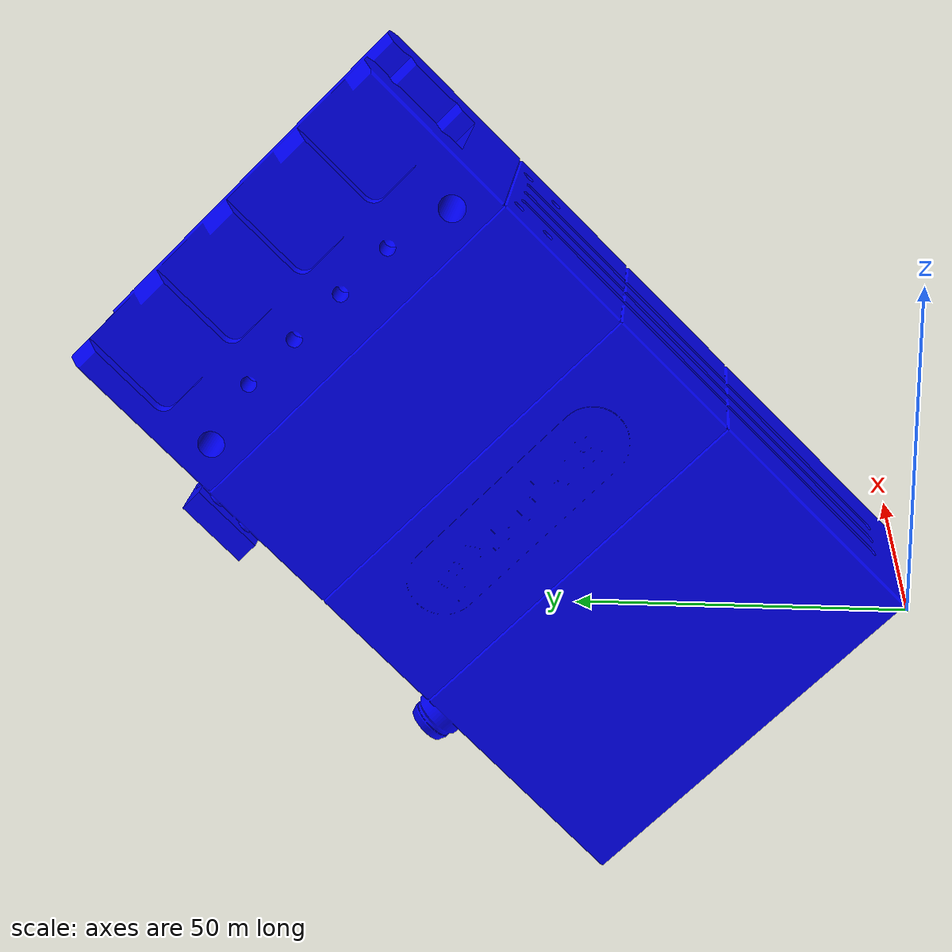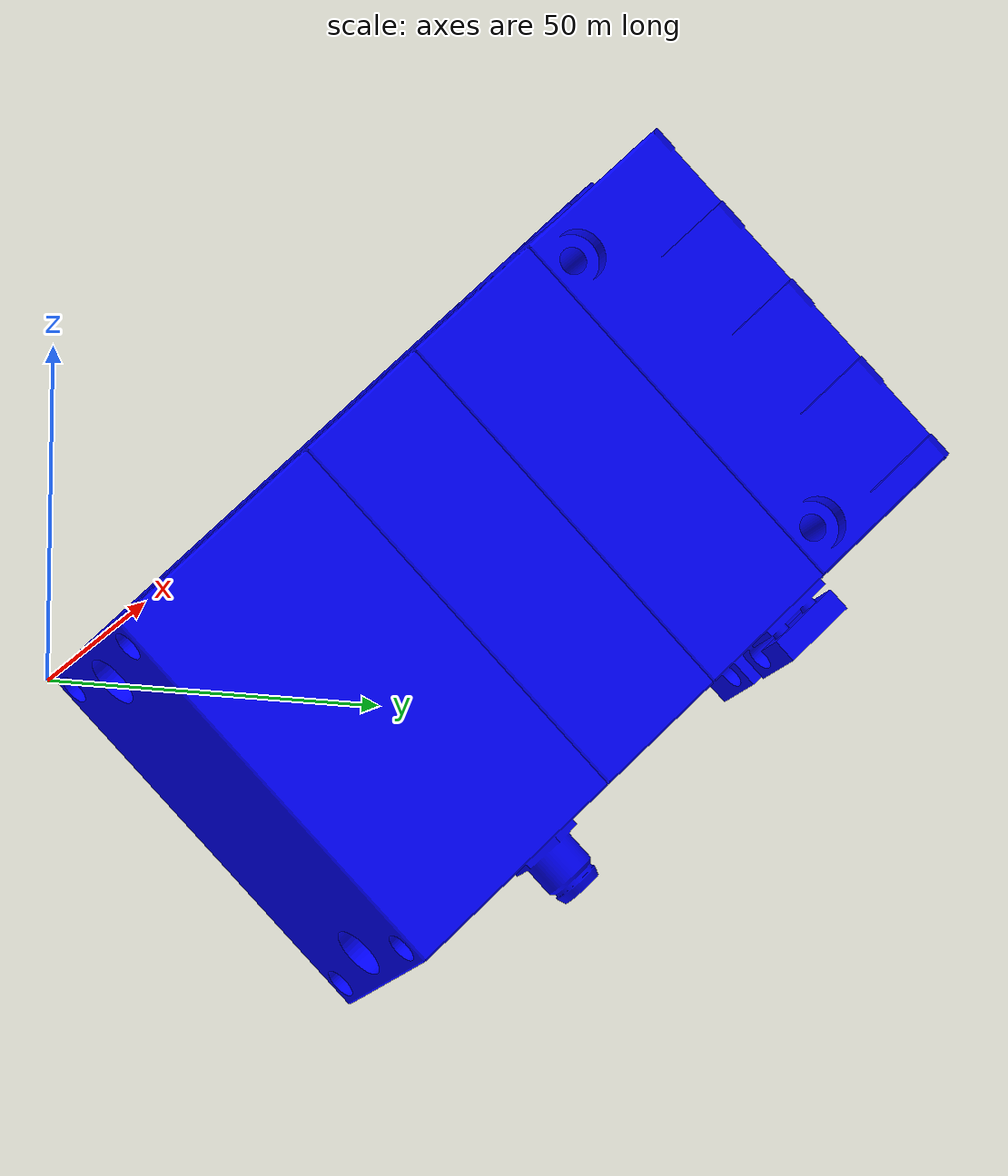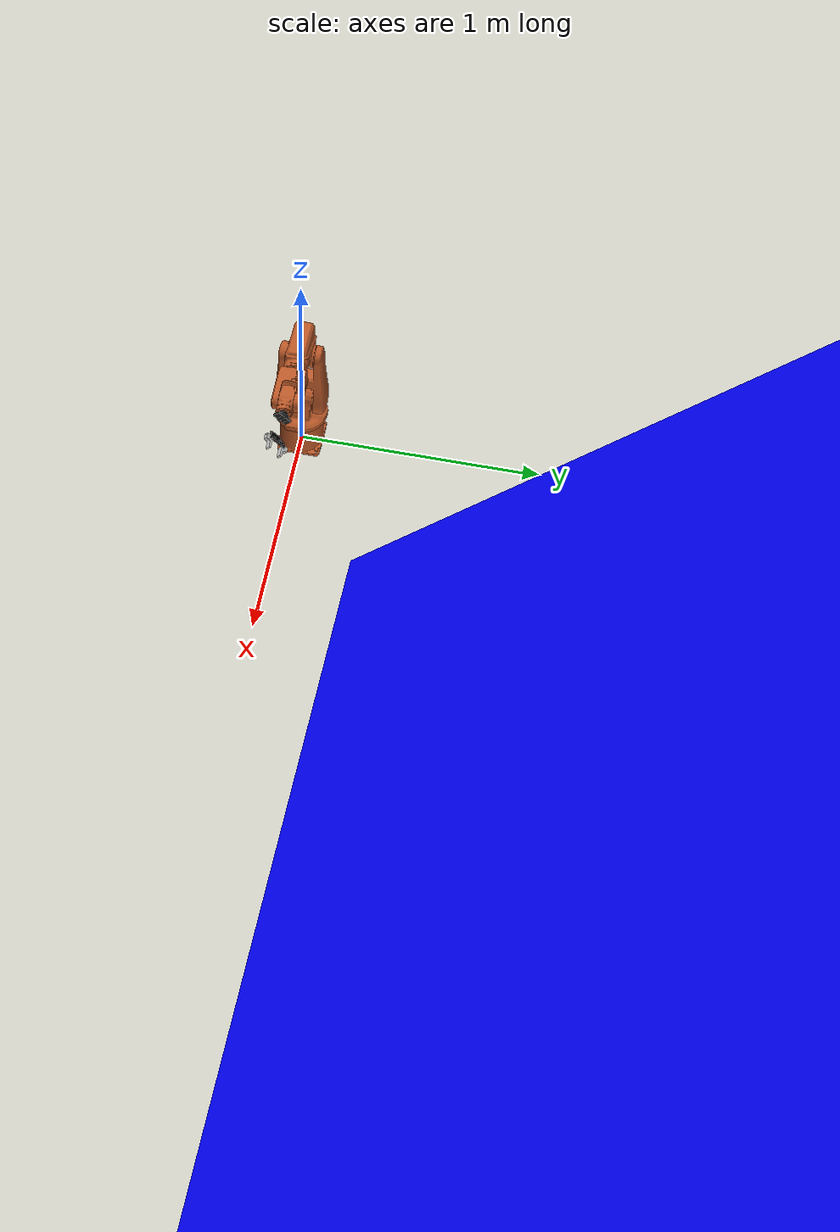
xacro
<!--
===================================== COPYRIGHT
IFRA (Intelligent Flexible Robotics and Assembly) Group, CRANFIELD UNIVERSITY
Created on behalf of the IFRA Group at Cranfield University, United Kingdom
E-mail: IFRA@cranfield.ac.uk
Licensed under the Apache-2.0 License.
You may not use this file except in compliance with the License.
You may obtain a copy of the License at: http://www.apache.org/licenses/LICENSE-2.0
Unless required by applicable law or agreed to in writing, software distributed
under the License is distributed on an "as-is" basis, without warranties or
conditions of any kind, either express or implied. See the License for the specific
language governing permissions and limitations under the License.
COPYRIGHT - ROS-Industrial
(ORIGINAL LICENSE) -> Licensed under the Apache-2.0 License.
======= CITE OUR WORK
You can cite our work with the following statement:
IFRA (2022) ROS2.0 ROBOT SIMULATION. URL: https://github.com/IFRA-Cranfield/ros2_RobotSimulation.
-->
<?xml version="1.0" ?>

<robot name="irb120egp64" xmlns:xacro="http://ros.org/wiki/xacro">

  <!-- Include XACRO-MACRO file of the IRB120: -->
  <xacro:include filename="$(find irb120egp64_ros2_gazebo)/urdf/irb120egp64_macro.urdf.xacro"/>
  <xacro:irb120egp64 prefix=""/>

  <!-- Fix robot to Gazebo world -->
  <link name="world"/>

  <joint name="world-base_link-fixed" type="fixed">
    <parent link="world"/>
    <child link="base_link"/>
  </joint>

</robot>

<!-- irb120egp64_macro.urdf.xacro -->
<robot xmlns:xacro="http://ros.org/wiki/xacro">

  <!-- Include additional ABB-Resources/MATERIALS+COLOUR xacro files: -->
  <xacro:include filename="$(find irb120egp64_ros2_gazebo)/urdf/abb_resources/common_materials.xacro"/>

  <!-- Load TRANSMISSION file: -->
  <xacro:include filename="$(find irb120egp64_ros2_gazebo)/urdf/irb120egp64_transmission.xacro" />
  <!-- Load GAZEBO/ROS2_CONTROL file: -->
  <xacro:include filename="$(find irb120egp64_ros2_gazebo)/urdf/irb120egp64_gazebo.xacro" />

  <!-- XACRO-MACRO of ABB-IRB120: -->
  <xacro:macro name="irb120egp64" params="prefix">

    <!-- ABB-IRB120 + EGP64 TRANSMISSION: -->
    <xacro:irb120egp64_transmission prefix=""/>
    <!-- ABB-IRB120 + EGP64 GAZEBO - ROS2_CONTROL: -->
    <xacro:irb120egp64_gazebo prefix=""/>

    <!-- ***** ABB-IRB120 + EGP64 ROBOT .urdf SERIAL CHAIN ***** -->

    <!-- Link list: -->
    <!-- base_link -->
    <link name="${prefix}base_link">
      <inertial>
        <mass value="6.215"/>
        <origin xyz="-0.04204 8.01E-05 0.07964" rpy="0 0 0"/>
        <inertia ixx="0.0247272" ixy="-8.0784E-05" ixz="0.00130902" iyy="0.0491285" iyz="-8.0419E-06" izz="0.0472376"/>
      </inertial>
      <visual>
        <origin xyz="0 0 0" rpy="0 0 0"/>
        <geometry>
          <mesh filename="file://$(find irb120_ros2_gazebo)/meshes/visual/base_link.stl"/>
        </geometry>
        <xacro:material_abb_orange />
      </visual>
      <collision>
        <origin xyz="0 0 0" rpy="0 0 0"/>
        <geometry>
          <mesh filename="file://$(find irb120_ros2_gazebo)/meshes/collision/base_link.stl"/>
        </geometry>
        <xacro:material_abb_yellow />
      </collision>
    </link>

    <!-- link_1 -->
    <link name="${prefix}link_1">
      <inertial>
        <mass value="3.067" />
        <origin xyz="9.77E-05 -0.00012 0.23841" rpy="0 0 0"/>
        <inertia ixx="0.0142175" ixy="-1.28579E-05" ixz="-2.31364E-05" iyy="0.0144041" iyz="1.93404E-05" izz="0.0104533"/>
      </inertial>
      <visual>
        <origin xyz="0 0 0" rpy="0 0 0"/>
        <geometry>
          <mesh filename="file://$(find irb120_ros2_gazebo)/meshes/visual/link_1.stl"/>
        </geometry>
        <xacro:material_abb_orange />
      </visual>
      <collision>
        <origin xyz="0 0 0" rpy="0 0 0"/>
        <geometry>
          <mesh filename="file://$(find irb120_ros2_gazebo)/meshes/collision/link_1.stl"/>
        </geometry>
        <xacro:material_abb_yellow />
      </collision>
    </link>

    <!-- link_2 -->
    <link name="${prefix}link_2">
      <inertial>
        <mass value="3.909"/>
        <origin xyz="0.00078 -0.00212 0.10124" rpy="0 0 0"/>
        <inertia ixx="0.0603111" ixy="9.83431E-06" ixz="5.72407E-05" iyy="0.041569" iyz="-0.00050497" izz="0.0259548"/>
      </inertial>
      <visual>
        <origin xyz="0 0 0" rpy="0 0 0"/>
        <geometry>
          <mesh filename="file://$(find irb120_ros2_gazebo)/meshes/visual/link_2.stl"/>
        </geometry>
        <xacro:material_abb_orange />
      </visual>
      <collision>
        <origin xyz="0 0 0" rpy="0 0 0"/>
        <geometry>
          <mesh filename="file://$(find irb120_ros2_gazebo)/meshes/collision/link_2.stl"/>
        </geometry>
        <xacro:material_abb_yellow />
      </collision>
    </link>

    <!-- link_3 -->
    <link name="${prefix}link_3">
      <inertial>
        <mass value="2.944"/>
        <origin xyz="0.02281 0.00106 0.05791" rpy="0 0 0"/>
        <inertia ixx="0.00835606" ixy="-8.01545E-05" ixz="0.00142884" iyy="0.016713" iyz="-0.000182227" izz="0.0126984"/>
      </inertial>
      <visual>
        <origin xyz="0 0 0" rpy="0 0 0"/>
        <geometry>
          <mesh filename="file://$(find irb120_ros2_gazebo)/meshes/visual/link_3.stl"/>
        </geometry>
        <xacro:material_abb_orange />
      </visual>
      <collision>
        <origin xyz="0 0 0" rpy="0 0 0"/>
        <geometry>
          <mesh filename="file://$(find irb120_ros2_gazebo)/meshes/collision/link_3.stl"/>
        </geometry>
        <xacro:material_abb_yellow />
      </collision>
    </link>

    <!-- link_4 -->
    <link name="${prefix}link_4">
      <inertial>
        <mass value="1.328"/>
        <origin xyz="0.2247 0.00015 0.00041" rpy="0 0 0"/>
        <inertia ixx="0.00284661" ixy="-2.12765E-05" ixz="-1.6435E-05" iyy="0.00401346" iyz="1.31336E-05" izz="0.0052535"/>
      </inertial>
      <visual>
        <origin xyz="0 0 0" rpy="0 0 0"/>
        <geometry>
          <mesh filename="file://$(find irb120_ros2_gazebo)/meshes/visual/link_4.stl"/>
        </geometry>
        <xacro:material_abb_orange />
      </visual>
      <collision>
        <origin xyz="0 0 0" rpy="0 0 0"/>
        <geometry>
          <mesh filename="file://$(find irb120_ros2_gazebo)/meshes/collision/link_4.stl"/>
        </geometry>
        <xacro:material_abb_yellow />
      </collision>
    </link>

    <!-- link_5 -->
    <link name="${prefix}link_5">
      <inertial>
        <mass value="0.546"/>
        <origin xyz="-0.00109 3.68E-05 6.22E-05" rpy="0 0 0"/>
        <inertia ixx="0.000404891" ixy="1.61943E-06" ixz="8.46805E-07" iyy="0.000892825" iyz="-1.51792E-08" izz="0.000815468"/>
      </inertial>
      <visual>
        <origin xyz="0 0 0" rpy="0 0 0"/>
        <geometry>
          <mesh filename="file://$(find irb120_ros2_gazebo)/meshes/visual/link_5.stl"/>
        </geometry>
        <xacro:material_abb_orange />
      </visual>
      <collision>
        <origin xyz="0 0 0" rpy="0 0 0"/>
        <geometry>
          <mesh filename="file://$(find irb120_ros2_gazebo)/meshes/collision/link_5.stl"/>
        </geometry>
        <xacro:material_abb_yellow />
      </collision>
    </link>

    <!-- link_6 -->
    <link name="${prefix}link_6">
      <inertial>
        <mass value="0.137"/>
        <origin xyz="-0.00706 -0.00017 -1.32E-06" rpy="0 0 0"/>
        <inertia ixx="0.001" ixy="0" ixz="0" iyy="0.001" iyz="0" izz="0.001"/>
      </inertial>
      <visual>
        <origin xyz="0 0 0" rpy="0 0 0"/>
        <geometry>
          <mesh filename="file://$(find irb120_ros2_gazebo)/meshes/visual/link_6.stl"/>
        </geometry>
        <xacro:material_abb_black />
      </visual>
      <collision>
        <origin xyz="0 0 0" rpy="0 0 0"/>
        <geometry>
          <mesh filename="file://$(find irb120_ros2_gazebo)/meshes/collision/link_6.stl"/>
        </geometry>
        <xacro:material_abb_yellow />
      </collision>
    </link>
    <!-- end of link list -->

    <!-- Joint list: -->
    <!-- joint_1 -->
    <joint name="${prefix}joint_1" type="revolute">
      <origin rpy="0 0 0" xyz="0 0 0"/>
      <parent link="${prefix}base_link"/>
      <child link="${prefix}link_1"/>
      <limit effort="0" lower="-2.87979" upper="2.87979" velocity="4.36332"/>
      <axis xyz="0 0 1"/>
      <dynamics damping="0.0" friction="0.0"/>
    </joint>

    <!-- joint_2 -->
    <joint name="${prefix}joint_2" type="revolute">
      <origin rpy="0 0 0" xyz="0 0 0.29"/>
      <parent link="${prefix}link_1"/>
      <child link="${prefix}link_2"/>
      <limit effort="0" lower="-1.91986" upper="1.91986" velocity="4.36332"/>
      <axis xyz="0 1 0"/>
      <dynamics damping="0.0" friction="0.0"/>
    </joint>

    <!-- joint_3 -->
    <joint name="${prefix}joint_3" type="revolute">
      <origin rpy="0 0 0" xyz="0 0 0.27"/>
      <parent link="${prefix}link_2"/>
      <child link="${prefix}link_3"/>
      <limit effort="0" lower="-1.91986" upper="1.22173" velocity="4.36332"/>
      <axis xyz="0 1 0"/>
      <dynamics damping="0.0" friction="0.0"/>
    </joint>

    <!-- joint_4 -->
    <joint name="${prefix}joint_4" type="revolute">
      <origin rpy="0 0 0" xyz="0 0 0.07"/>
      <parent link="${prefix}link_3"/>
      <child link="${prefix}link_4"/>
      <limit effort="0" lower="-2.79253" upper="2.79253" velocity="5.58505"/>
      <axis xyz="1 0 0"/>
      <dynamics damping="0.0" friction="0.0"/>
    </joint>

    <!-- joint_5 -->
    <joint name="${prefix}joint_5" type="revolute">
      <origin rpy="0 0 0" xyz="0.302 0 0"/>
      <parent link="${prefix}link_4"/>
      <child link="${prefix}link_5"/>
      <limit effort="0" lower="-2.094395" upper="2.094395" velocity="5.58505"/>
      <axis xyz="0 1 0"/>
      <dynamics damping="0.0" friction="0.0"/>
    </joint>

    <!-- joint_6 -->
    <joint name="${prefix}joint_6" type="revolute">
      <origin rpy="0 0 0" xyz="0.072 0 0"/>
      <parent link="${prefix}link_5"/>
      <child link="${prefix}link_6"/>
      <limit effort="0" lower="-6.98132" upper="6.98132" velocity="7.33038"/>
      <axis xyz="1 0 0"/>
      <dynamics damping="0.0" friction="0.0"/>
    </joint>
    <!-- end of joint list -->

    <!-- ROS-Industrial 'base' frame: base_link to ABB World Coordinates transform -->
    <link name="${prefix}base" />
    <joint name="${prefix}base_link-base" type="fixed">
      <origin xyz="0 0 0" rpy="0 0 0"/>
      <parent link="${prefix}base_link"/>
      <child link="${prefix}base"/>
    </joint>

    <!-- ROS-Industrial 'flange' frame: attachment point for EEF models -->
    <link name="${prefix}flange"/>
    <joint type="fixed" name="${prefix}joint_6-flange">
      <origin xyz="0 0 0" rpy="0 0 0"/>
      <parent link="${prefix}link_6"/>
      <child link="${prefix}flange"/>
    </joint>

    <!-- ROS-Industrial 'tool0' frame: all-zeros tool frame -->
    <link name="${prefix}tool0" />
    <joint name="${prefix}link_6-tool0" type="fixed">
      <origin xyz="0 0 0" rpy="0 ${radians(90)} 0" />
      <parent link="${prefix}flange" />
      <child link="${prefix}tool0" />
    </joint>

    <!-- ===== Link SCHUNK GRIPPER to ABB IRB120 ROBOT ===== -->

    <!-- Schunk coupler (LINK): -->
    <link name="schunk_coupler">
      <visual>
        <geometry>
          <mesh filename="file://$(find irb120egp64_ros2_gazebo)/meshes/egp64/Schunk Gripper - ADAPTER.dae" />
        </geometry>
        <material name="flat_black"/>
      </visual>
      <collision>
        <geometry>
          <mesh filename="file://$(find irb120egp64_ros2_gazebo)/meshes/egp64/Schunk Gripper - ADAPTER.dae" />
        </geometry>
      </collision>
      <inertial>
        <origin xyz="0 0 0" rpy="0 0 ${pi/4}" />
        <mass value="0.001" />
        <inertia ixx="0.001" ixy="0.0" ixz="0.0" iyy="0.001" iyz="0.0" izz="0.001"/>
      </inertial>
    </link>

    <!-- Schunk coupler (JOINT): -->
    <joint name="schunk_coupler_joint" type="fixed">
      <origin xyz="0 0 0.001" rpy="0 0 ${pi/4}" />
      <parent link="tool0"/>
      <child link="schunk_coupler"/>
    </joint>
    <gazebo reference="schunk_coupler">
      <mu1>0.9</mu1>
      <mu2>0.9</mu2>
      <material>Gazebo/FlatBlack</material>
    </gazebo>

    <link name="egp64_gripper_base_link">
      <inertial>
        <origin xyz="0 0 0" rpy="0 0 0" />
        <mass value="0.005" />
        <inertia ixx="0.001" ixy="0.0" ixz="0.0" iyy="0.001" iyz="0.0" izz="0.001"/>
      </inertial>
      <visual>
        <geometry>
          <mesh filename="file://$(find irb120egp64_ros2_gazebo)/meshes/egp64/Schunk Gripper - BASE noAdapter.dae" />
        </geometry>
        <material name="blue">
          <color rgba="0 0 1 1"/>
        </material>
      </visual>
      <collision>
        <geometry>
          <mesh filename="file://$(find irb120egp64_ros2_gazebo)/meshes/egp64/Schunk Gripper - BASE noAdapter.dae" />
        </geometry>
	      <material name="blue"/>
      </collision>
    </link>

    <joint name="egp64_coupler" type="fixed">
      <parent link="schunk_coupler"/>
      <child link="egp64_gripper_base_link"/>
      <origin xyz="-0.03205 0.01812 0.02047" rpy="0 0 0" />
    </joint>

    <!-- LEFT FINGER BASE -->

    <link name="egp64_finger_left_link">
      <inertial>
        <origin xyz="0.01483 -0.00782 0" rpy="0 0 0" />
        <mass value="0.002" />
        <inertia ixx="0.001" ixy="0.0" ixz="0.0" iyy="0.001" iyz="0.0" izz="0.001"/>
      </inertial>
      <visual>
        <geometry>
          <mesh filename="file://$(find irb120egp64_ros2_gazebo)/meshes/egp64/Schunk Gripper - LEFT FINGER BASE.dae" />
        </geometry>
        <material name="black">
          <color rgba="0 0 0 1"/>
        </material>
      </visual>
      <collision>
        <geometry>
          <mesh filename="file://$(find irb120egp64_ros2_gazebo)/meshes/egp64/Schunk Gripper - LEFT FINGER BASE.dae" />
        </geometry>
	      <material name="black" />
      </collision>
    </link>

    <joint name="egp64_finger_left_joint" type="prismatic" >
      <parent link="egp64_gripper_base_link" />
      <child link="egp64_finger_left_link" />
      <limit effort="100" lower="-0.001" upper="0.04" velocity="0.2"/>
      <origin xyz="0.01483 -0.00782 0" rpy="0 0 0" />
      <axis xyz="-1 0 0" />
    </joint>

    <!-- LEFT FINGERTIP -->

    <link name="egp64_fingertip_left_link">
      <inertial>
        <origin xyz="0.03869 -0.0005 0.00093" rpy="0 0 0" />
        <mass value="0.001" />
        <inertia ixx="0.001" ixy="0.0" ixz="0.0" iyy="0.001" iyz="0.0" izz="0.001"/>
      </inertial>
      <visual>
        <geometry>
          <mesh filename="file://$(find irb120egp64_ros2_gazebo)/meshes/egp64/Schunk Gripper - LEFT FINGER.dae" />
        </geometry>
        <material name="silver">
          <color rgba="0.8 0.8 0.8 1"/>
        </material>
      </visual>
      <collision>
        <geometry>
          <mesh filename="file://$(find irb120egp64_ros2_gazebo)/meshes/egp64/Schunk Gripper - LEFT FINGER.dae" />
        </geometry>
	      <material name="black"/>
      </collision>
    </link>

    <joint name="egp64_fingertip_left_joint" type="fixed" >
      <parent link="egp64_finger_left_link" />
      <child link="egp64_fingertip_left_link" />
      <origin xyz="0.03869 -0.0005 0.00093" rpy="0 0 0"/>
    </joint>

    <!-- RIGHT FINGER BASE -->

    <link name="egp64_finger_right_link">
      <inertial>
        <origin xyz="-0.0153 -0.00602 0" rpy="0 0 0" />
        <mass value="0.002" />
        <inertia ixx="0.001" ixy="0.0" ixz="0.0" iyy="0.001" iyz="0.0" izz="0.001"/>
      </inertial>
      <visual>
        <geometry>
          <mesh filename="file://$(find irb120egp64_ros2_gazebo)/meshes/egp64/Schunk Gripper - RIGHT FINGER BASE.dae" />
        </geometry>
	      <material name="black"/>
      </visual>
      <collision>
        <geometry>
          <mesh filename="file://$(find irb120egp64_ros2_gazebo)/meshes/egp64/Schunk Gripper - RIGHT FINGER BASE.dae" />
        </geometry>
	      <material name="black"/>
      </collision>
    </link>

    <joint name="egp64_finger_right_joint" type="prismatic" >
      <parent link="egp64_gripper_base_link" />
      <child link="egp64_finger_right_link" />
      <limit effort="100" lower="-0.001" upper="0.04" velocity="0.2"/>
      <origin xyz="-0.0153 -0.00602 0" rpy="0 0 0" />
      <axis xyz="1 0 0" />
    </joint>

    <!-- RIGHT FINGERTIP -->

    <link name="egp64_fingertip_right_link">
      <inertial>
        <origin xyz="-0.01211 -0.00197 0.00093" rpy="0 0 0" />
        <mass value="0.001" />
        <inertia ixx="0.001" ixy="0.0" ixz="0.0" iyy="0.001" iyz="0.0" izz="0.001"/>
      </inertial>
      <visual>
        <geometry>
          <mesh filename="file://$(find irb120egp64_ros2_gazebo)/meshes/egp64/Schunk Gripper - RIGHT FINGER.dae" />
        </geometry>
	      <material name="silver" />
      </visual>
      <collision>
        <geometry>
          <mesh filename="file://$(find irb120egp64_ros2_gazebo)/meshes/egp64/Schunk Gripper - RIGHT FINGER.dae" />
        </geometry>
	      <material name="black"/>
     </collision>
    </link>

    <joint name="egp64_fingertip_right_joint" type="fixed" >
      <parent link="egp64_finger_right_link" />
      <child link="egp64_fingertip_right_link" />
      <origin xyz="-0.01211 -0.00197 0.00093" rpy="0 0 0"/>
    </joint>

  </xacro:macro>
</robot>

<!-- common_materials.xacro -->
<robot xmlns:xacro="http://ros.org/wiki/xacro">
  <xacro:include filename="$(find irb120_ros2_gazebo)/urdf/abb_resources/common_colours.xacro"/>

  <xacro:macro name="material_abb_orange">
    <material name="">
      <color rgba="${colour_abb_orange}"/>
    </material>
  </xacro:macro>

  <xacro:macro name="material_abb_graphite_white">
    <material name="">
      <color rgba="${colour_abb_graphite_white}"/>
    </material>
  </xacro:macro>

  <xacro:macro name="material_abb_white">
    <material name="">
      <color rgba="${colour_abb_white}"/>
    </material>
  </xacro:macro>

  <xacro:macro name="material_abb_pebble_gray">
    <material name="">
      <color rgba="${colour_abb_pebble_gray}"/>
    </material>
  </xacro:macro>

  <xacro:macro name="material_abb_dark_gray">
    <material name="">
      <color rgba="${colour_abb_dark_gray}"/>
    </material>
  </xacro:macro>

  <xacro:macro name="material_abb_black">
    <material name="">
      <color rgba="${colour_abb_black}"/>
    </material>
  </xacro:macro>

  <xacro:macro name="material_abb_signal_red">
    <material name="">
      <color rgba="${colour_abb_signal_red}"/>
    </material>
  </xacro:macro>

  <xacro:macro name="material_abb_carmine_red">
    <material name="">
      <color rgba="${colour_abb_carmine_red}"/>
    </material>
  </xacro:macro>

  <xacro:macro name="material_abb_ultramarine_blue">
    <material name="">
      <color rgba="${colour_abb_ultramarine_blue}"/>
    </material>
  </xacro:macro>

  <xacro:macro name="material_abb_sky_blue">
    <material name="">
      <color rgba="${colour_abb_sky_blue}"/>
    </material>
  </xacro:macro>

  <xacro:macro name="material_abb_leaf_green">
    <material name="">
      <color rgba="${colour_abb_leaf_green}"/>
    </material>
  </xacro:macro>

  <xacro:macro name="material_abb_olive_green">
    <material name="">
      <color rgba="${colour_abb_olive_green}"/>
    </material>
  </xacro:macro>

  <xacro:macro name="material_abb_gray_white">
    <material name="">
      <color rgba="${colour_abb_gray_white}"/>
    </material>
  </xacro:macro>

  <xacro:macro name="material_abb_pure_white">
    <material name="">
      <color rgba="${colour_abb_pure_white}"/>
    </material>
  </xacro:macro>

  <xacro:macro name="material_abb_yellow">
    <material name="">
      <color rgba="${colour_abb_yellow}"/>
    </material>
  </xacro:macro>

</robot>

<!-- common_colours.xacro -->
<robot xmlns:xacro="http://ros.org/wiki/xacro">
  <!-- Conversion were obtained from http://www.e-paint.co.uk/Lab_values.asp
       unless otherwise stated. -->

  <!-- Actual colors -->
  <!-- NCS 2070-Y60R orange, standard robot color 1974 - May 2014 -->
  <xacro:property name="colour_abb_orange" value="0.7372549 0.3490196 0.1607843 1" />

  <!-- RAL 7035 light grey (abb graphite white), standard robot color May 2014 - current -->
  <xacro:property name="colour_abb_graphite_white" value="0.7725490 0.7803922 0.7686275 1" />

  <!-- RAL 9003 signal white (abb white), cleanroom robot color -->
  <xacro:property name="colour_abb_white" value="0.9254902 0.9254902 0.9058824 1" />

  <!-- RAL 7032 pebble gray, controller -->
  <xacro:property name="colour_abb_pebble_gray" value="0.7058823 0.6901961 0.6313725 1" />

  <!-- RAL 7012 basalt gray (abb dark gray) , robot primer -->
  <xacro:property name="colour_abb_dark_gray" value="0.3450980 0.3647059 0.3686275 1" />

  <!-- RAL 7021 black gray (abb black) , robot with dark link color -->
  <xacro:property name="colour_abb_black" value="0.1882353 0.1960784 0.2039216 1" />

  <!-- Other robot colours availble, but not limited too. -->
  <!-- RAL 3001 signal red -->
  <xacro:property name="colour_abb_signal_red" value="0.5960784 0.1372549 0.1372549 1" />

  <!-- RAL 3002 carmine red -->
  <xacro:property name="colour_abb_carmine_red" value="0.5960784 0.1333333 0.1333333 1" />

  <!-- RAL 5002 ultramarine blue -->
  <xacro:property name="colour_abb_ultramarine_blue" value="0.1176471 0.2117647 0.4823529 1" />

  <!-- RAL 5015 sky blue -->
  <xacro:property name="colour_abb_sky_blue" value="0.0431373 0.4823529 0.6901961 1" />

  <!-- RAL 6002 leaf green -->
  <xacro:property name="colour_abb_leaf_green" value="0.1764706 0.3529412 0.1529412 1" />

  <!-- RAL 6003 olive green -->
  <xacro:property name="colour_abb_olive_green" value="${ 80/255} ${ 83/255} ${ 60/255} 1" />

  <!-- RAL 9002 gray white -->
  <xacro:property name="colour_abb_gray_white" value="0.8392157 0.8352941 0.7921569 1" />

  <!-- RAL 9010 pure white -->
  <xacro:property name="colour_abb_pure_white" value="0.9411765 0.9294118 0.8823529 1" />

  <!-- approximations -->
  <!-- yellow, collision model -->
  <xacro:property name="colour_abb_yellow" value="1 1 0 1" />

</robot>
